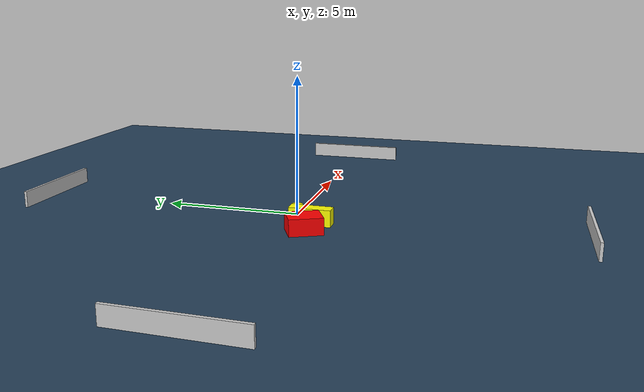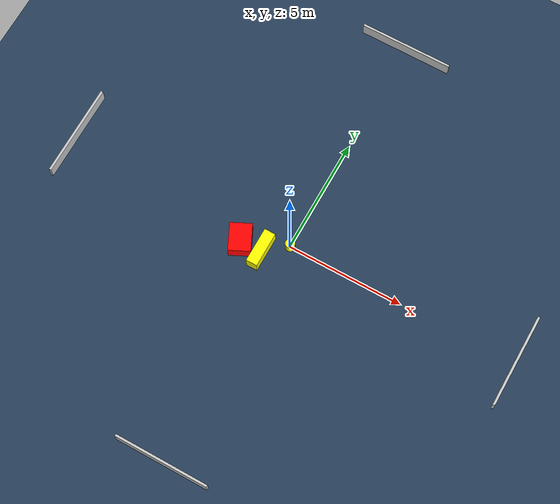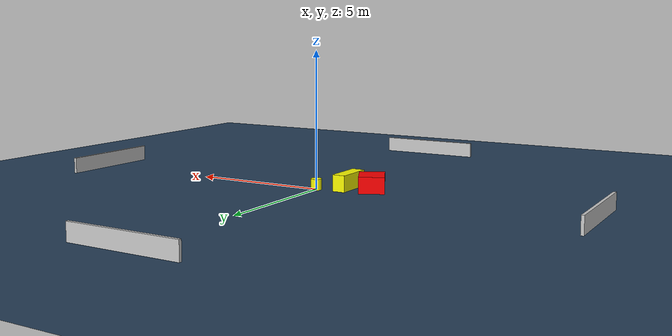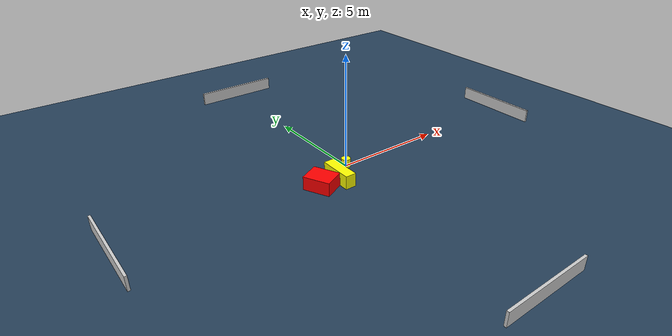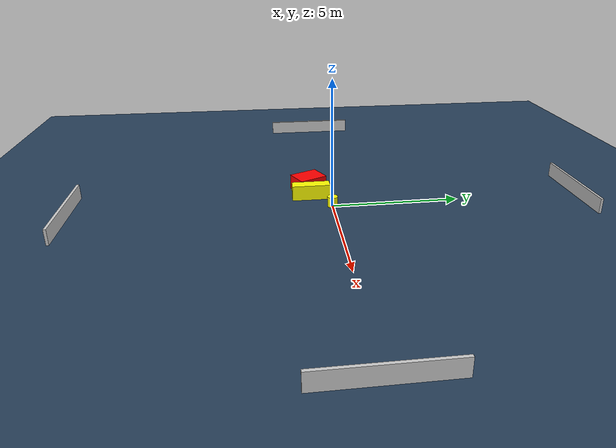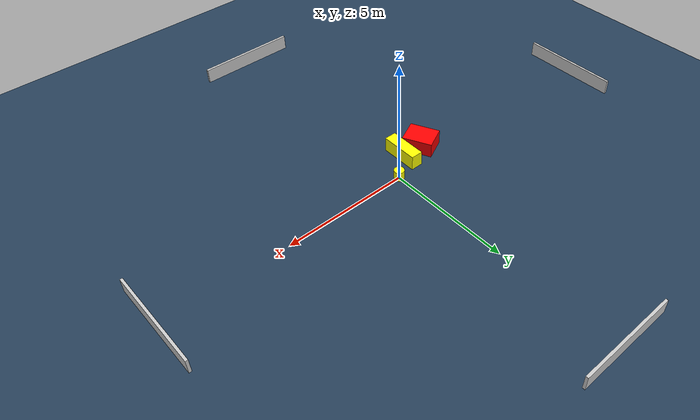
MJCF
<?xml version="1.0" ?>
<mujoco model="generated_environment">
  <option timestep="0.01" integrator="RK4" cone="elliptic"/>
  <default>
    <geom density="1"/>
  </default>
  <asset>
    <texture builtin="gradient" height="3072" name="skybox" rgb1="0.3 0.5 0.7" rgb2="0 0 0" type="skybox" width="512"/>
    <texture builtin="checker" height="300" name="groundplane" rgb1="0.2 0.3 0.4" rgb2="0.1 0.2 0.3" type="2d" width="300"/>
    <material name="groundplane" reflectance="0.2" texrepeat="5 5" texture="groundplane"/>
  </asset>
  <worldbody>
    <light dir="0 0 -1" directional="true" pos="0 0 1.5"/>
    <geom condim="3" friction="0.5 0.005 0.001" material="groundplane" name="floor" pos="0 0 0" size="0 0 0.05" type="plane"/>
    <body name="walls">
      <geom name="wall_1" condim="4" pos="-10.0 0.0 0.3" rgba="0.800000011920929 0.800000011920929 0.800000011920929 1.0" size="0.05 2.0 0.3" type="box"/>
      <geom name="wall_2" condim="4" pos="10.0 0.0 0.3" rgba="0.800000011920929 0.800000011920929 0.800000011920929 1.0" size="0.05 2.0 0.3" type="box"/>
      <geom name="wall_3" condim="4" pos="0.0 -10.0 0.3" rgba="0.800000011920929 0.800000011920929 0.800000011920929 1.0" size="2.0 0.05 0.3" type="box"/>
      <geom name="wall_4" condim="4" pos="0.0 10.0 0.3" rgba="0.800000011920929 0.800000011920929 0.800000011920929 1.0" size="2.0 0.05 0.3" type="box"/>
    </body>
    <body name="robot">
      <joint name="joint_x" type="slide" pos="0 0 0" axis="1 0 0"/>
      <joint name="joint_y" type="slide" pos="0 0 0" axis="0 1 0"/>
      <geom name="robot" type="cylinder" pos="0.0 0.0 0.2" size="0.2 0.2 0.0" mass="5.0" friction="1.0 0.005 0.0001" condim="4" rgba="1.0 1.0 0.0 1.0"/>
    </body>
    <body name="obstacle_1_movable">
      <geom name="obstacle_1_movable" condim="4" pos="-0.9085000327774199 -0.7583064356265501 0.3" euler="0 0 269.98952749201965" friction="0.0 0.005 0.001" rgba="1.0 1.0 0.0 1.0" size="0.7542003158784027 0.23956429924651318 0.3" type="box" mass="0.1"/>
      <joint type="free"/>
    </body>
    <body name="obstacle_2_static">
      <geom name="obstacle_2_static" condim="4" pos="-1.8425541278317343 -0.7763105365690682 0.3" euler="0 0 26.03251378408743" friction="0.0 0.005 0.001" rgba="1.0 0.0 0.0 1.0" size="0.4635670659784942 0.5929127301407668 0.3" type="box"/>
    </body>
  </worldbody>
  <actuator>
    <motor name="actuator_x" joint="joint_x" gear="1" ctrlrange="-1 1"/>
    <motor name="actuator_y" joint="joint_y" gear="1" ctrlrange="-1 1"/>
  </actuator>
</mujoco>
